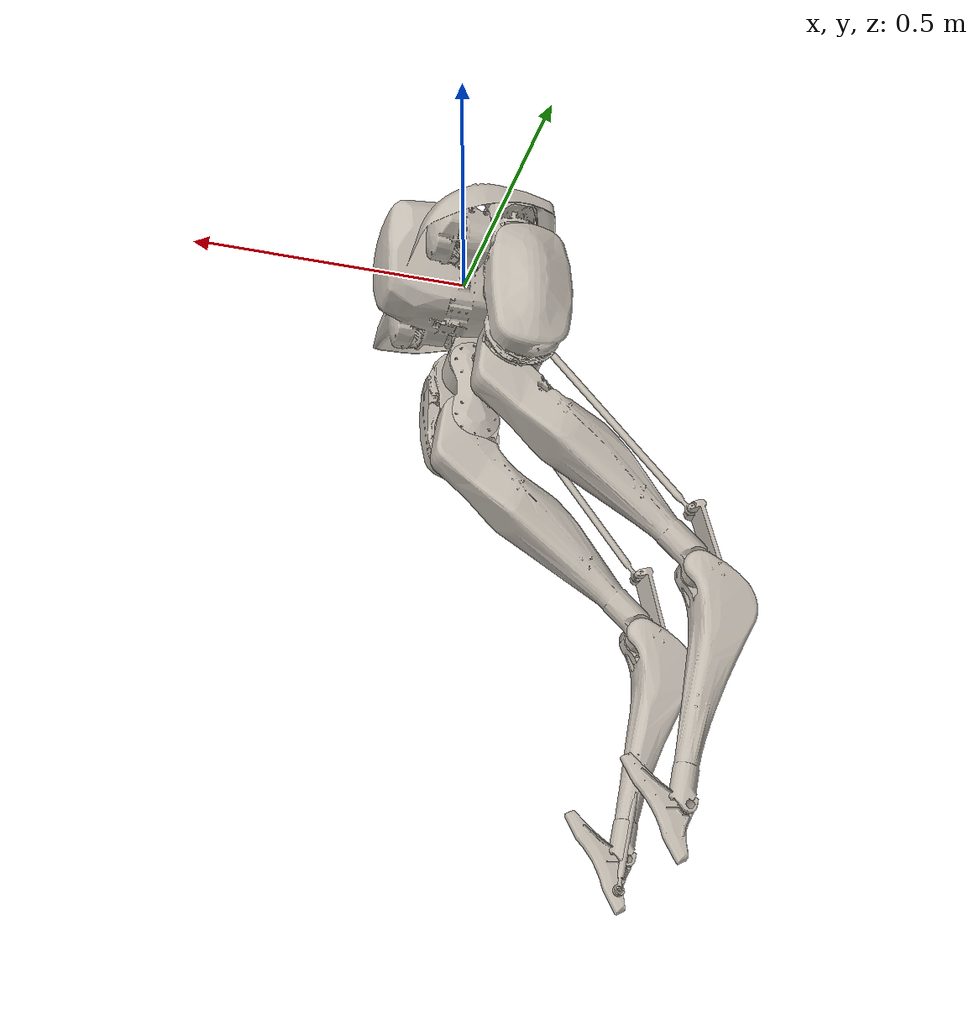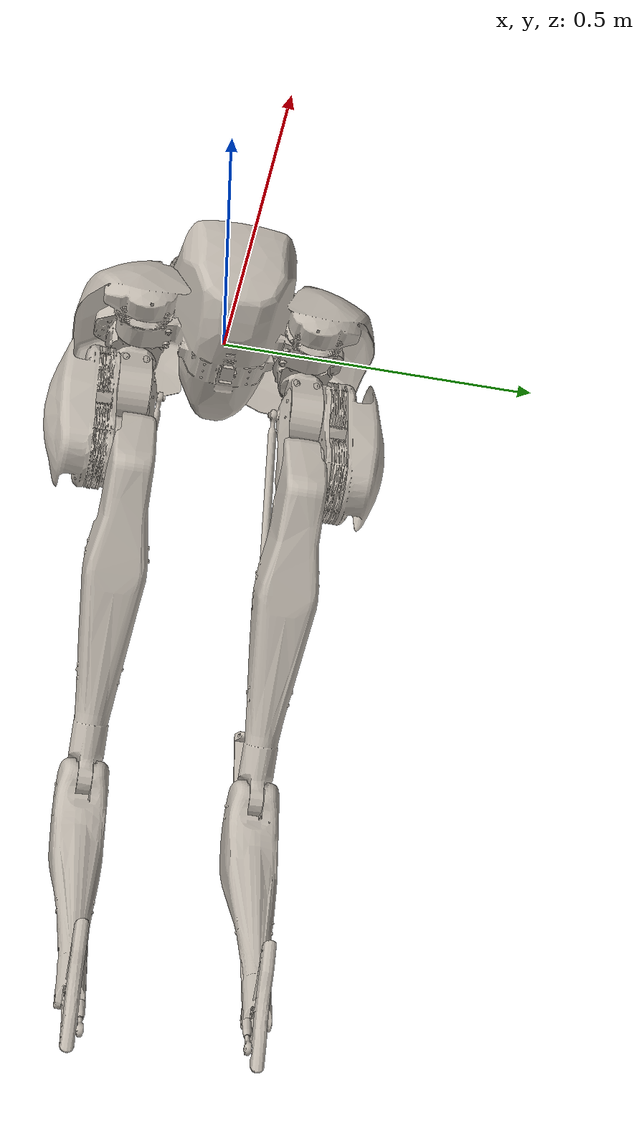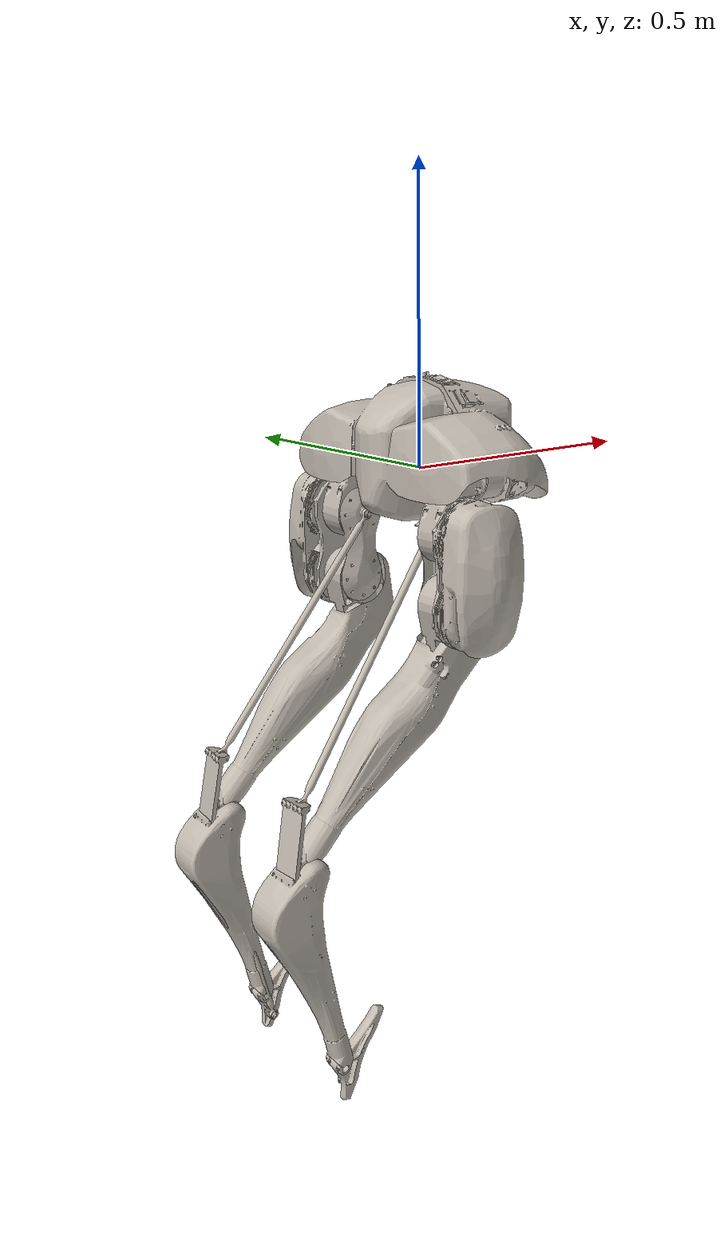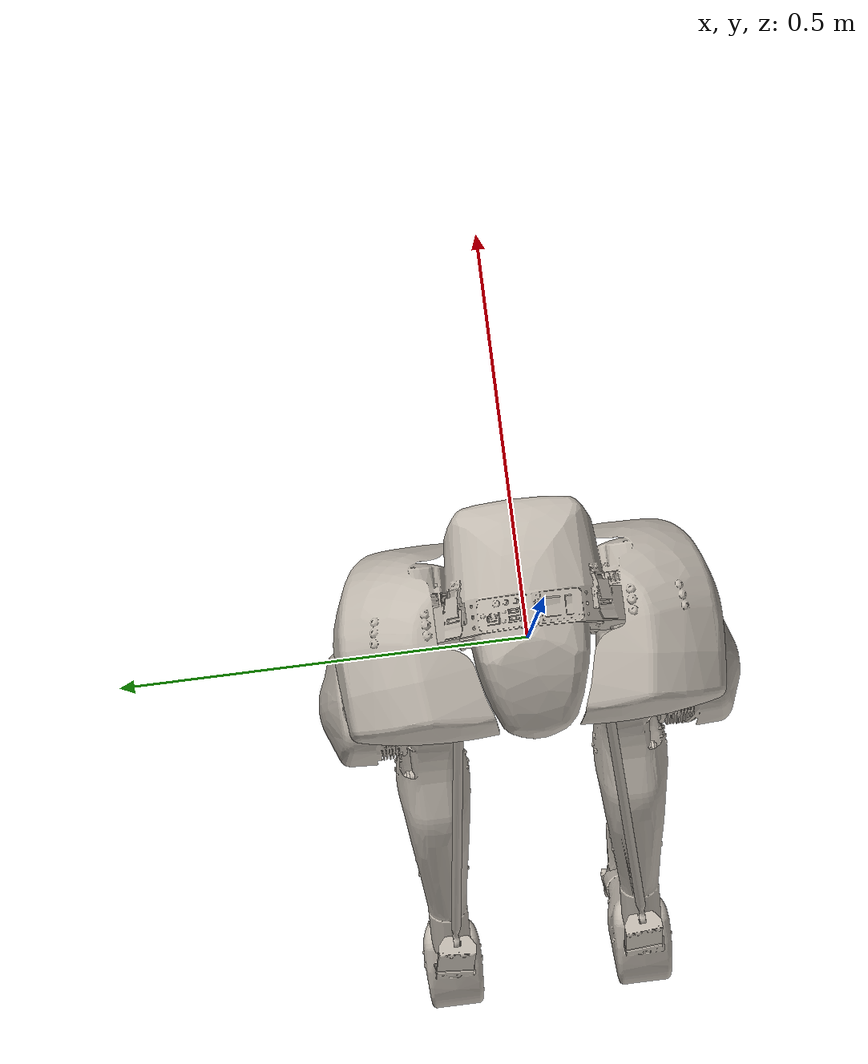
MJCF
<?xml version="1.0" ?>
<mujoco model="cassie">
	<compiler meshdir="cassie/meshes" texturedir="cassie/textures" angle="radian" autolimits="true" balanceinertia="true" boundmass="0.000001" boundinertia="0.000001"/>
	<default>
		<default class="visual">
			<geom contype="0" conaffinity="0"/>
		</default>
		<default class="collision">
			<geom rgba="1.0 0.0 0.0 0.0"/>
		</default>
	</default>
	<asset>
		<mesh name="cassie_pelvis" file="obj/cassie_pelvis.obj" scale="1.0 1.0 1.0"/>
		<mesh name="left_hip_roll" file="obj/left_hip_roll.obj" scale="1.0 1.0 1.0"/>
		<mesh name="left_hip_yaw" file="obj/left_hip_yaw.obj" scale="1.0 1.0 1.0"/>
		<mesh name="left_hip_pitch" file="obj/left_hip_pitch.obj" scale="1.0 1.0 1.0"/>
		<mesh name="left_achilles_rod" file="obj/left_achilles_rod.obj" scale="1.0 1.0 1.0"/>
		<mesh name="left_knee" file="obj/left_knee.obj" scale="1.0 1.0 1.0"/>
		<mesh name="left_knee_spring" file="obj/left_knee_spring.obj" scale="1.0 1.0 1.0"/>
		<mesh name="left_shin" file="obj/left_shin.obj" scale="1.0 1.0 1.0"/>
		<mesh name="left_tarsus" file="obj/left_tarsus.obj" scale="1.0 1.0 1.0"/>
		<mesh name="left_heel_spring" file="obj/left_heel_spring.obj" scale="1.0 1.0 1.0"/>
		<mesh name="left_foot_crank" file="obj/left_foot_crank.obj" scale="1.0 1.0 1.0"/>
		<mesh name="left_plantar_rod" file="obj/left_plantar_rod.obj" scale="1.0 1.0 1.0"/>
		<mesh name="left_foot" file="obj/left_foot.obj" scale="1.0 1.0 1.0"/>
		<mesh name="right_hip_roll" file="obj/right_hip_roll.obj" scale="1.0 1.0 1.0"/>
		<mesh name="right_hip_yaw" file="obj/right_hip_yaw.obj" scale="1.0 1.0 1.0"/>
		<mesh name="right_hip_pitch" file="obj/right_hip_pitch.obj" scale="1.0 1.0 1.0"/>
		<mesh name="right_achilles_rod" file="obj/right_achilles_rod.obj" scale="1.0 1.0 1.0"/>
		<mesh name="right_knee" file="obj/right_knee.obj" scale="1.0 1.0 1.0"/>
		<mesh name="right_knee_spring" file="obj/right_knee_spring.obj" scale="1.0 1.0 1.0"/>
		<mesh name="right_shin" file="obj/right_shin.obj" scale="1.0 1.0 1.0"/>
		<mesh name="right_tarsus" file="obj/right_tarsus.obj" scale="1.0 1.0 1.0"/>
		<mesh name="right_heel_spring" file="obj/right_heel_spring.obj" scale="1.0 1.0 1.0"/>
		<mesh name="right_foot_crank" file="obj/right_foot_crank.obj" scale="1.0 1.0 1.0"/>
		<mesh name="right_plantar_rod" file="obj/right_plantar_rod.obj" scale="1.0 1.0 1.0"/>
		<mesh name="right_foot" file="obj/right_foot.obj" scale="1.0 1.0 1.0"/>
		<material name="cassie" texture="cassie"/>
		<texture name="cassie" type="2d" file="cassie.png"/>
	</asset>
	<worldbody>
		<body name="cassie" pos="0.0 0.0 0.0" quat="1.0 0.0 0.0 0.0">
			<body name="cassie_pelvis" pos="0.0 0.0 0.0" quat="1.0 0.0 0.0 0.0">
				<geom name="Geom_0" type="mesh" pos="0.015332476235926151 -4.5823806431144476e-05 0.03643164783716202" quat="0.533416748046875 0.5333025455474854 -0.46415409445762634 0.46434471011161804" mesh="cassie_pelvis" material="cassie" class="visual"/>
				<geom name="Geom_1" type="ellipsoid" pos="0.029999999329447746 0.0 0.029999999329447746" quat="1.0 0.0 0.0 0.0" size="0.15000000596046448 0.11999999731779099 0.12999999523162842" class="collision"/>
				<geom name="Geom_2" type="capsule" pos="-0.009999999776482582 0.14000000059604645 0.009999999776482582" quat="0.7071067690849304 0.0 -0.7071067690849304 0.0" size="0.0949999988079071 0.029999999329447746 0.0" class="collision"/>
				<geom name="Geom_3" type="capsule" pos="-0.009999999776482582 -0.14000000059604645 0.009999999776482582" quat="0.7071067690849304 0.0 -0.7071067690849304 0.0" size="0.0949999988079071 0.029999999329447746 0.0" class="collision"/>
				<body name="right_hip_roll" pos="0.020999999716877937 -0.13500000536441803 0.0" quat="0.7071067690849304 0.0 0.7071067690849304 0.0">
					<inertial mass="1.8200000524520874" pos="-0.01792999915778637 9.999999747378752e-05 -0.044280000030994415" quat="0.9737591743469238 0.0044553508050739765 0.22640548646450043 0.022667817771434784" diaginertia="0.00384400668554008 0.0037928964011371136 0.0017220970476046205"/>
					<geom name="Geom_24" type="mesh" pos="-0.030032241716980934 -0.0027302380185574293 -0.06367003172636032" quat="0.8552268743515015 -0.10761242359876633 0.5061758756637573 -0.02815181203186512" mesh="right_hip_roll" material="cassie" class="visual"/>
					<joint name="right_hip_roll" type="hinge" pos="0.0 0.0 0.0" range="-0.39269909262657166 0.2617993950843811" axis="0.0 0.0 1.0"/>
					<body name="right_hip_yaw" pos="0.0 0.0 -0.07000000029802322" quat="0.7071067690849304 0.0 -0.7071067690849304 0.0">
						<inertial mass="1.1710000038146973" pos="0.0 9.999999747378752e-06 -0.03427699953317642" quat="0.7071460485458374 -4.9481481255497783e-05 -5.925715231569484e-05 0.7070674896240234" diaginertia="0.0028029999230057 0.0024429999757558107 0.0008419999503530562"/>
						<geom name="Geom_25" type="mesh" pos="6.4623468460922595e-06 -1.1435130545578431e-05 -0.07286112010478973" quat="0.7070610523223877 0.00026250959490425885 0.00012019480345770717 0.7071524262428284" mesh="right_hip_yaw" material="cassie" class="visual"/>
						<joint name="right_hip_yaw" type="hinge" pos="0.0 0.0 0.0" range="-0.39269909262657166 0.39269909262657166" axis="0.0 0.0 1.0"/>
						<body name="right_hip_pitch" pos="0.0 0.0 -0.09000000357627869" quat="-0.5 -0.5 -0.5 0.5">
							<inertial mass="5.519999980926514" pos="0.059459999203681946 4.999999873689376e-05 0.03581000119447708" quat="-0.011534487828612328 0.7081465125083923 -0.0015279552899301052 0.7059696316719055" diaginertia="0.03025735355913639 0.029717599973082542 0.010894046165049076"/>
							<geom name="Geom_26" type="mesh" pos="0.06051911786198616 0.0006756202201358974 0.055080264806747437" quat="0.48246756196022034 0.46817469596862793 0.5233864188194275 0.5235495567321777" mesh="right_hip_pitch" material="cassie" class="visual"/>
							<geom name="Geom_27" type="capsule" pos="0.05999999865889549 0.0 0.05000000074505806" quat="0.7071067690849304 0.0 -0.7071067690849304 0.0" size="0.07999999821186066 0.05999999865889549 0.0" class="collision"/>
							<joint name="right_hip_pitch" type="hinge" pos="0.0 0.0 0.0" range="-0.8726646304130554 1.3962633609771729" axis="0.0 0.0 1.0"/>
							<body name="right_knee" pos="0.11999999731779099 0.0 -0.0044999998062849045" quat="0.9238795042037964 0.0 -0.0 -0.3826834261417389">
								<inertial mass="0.7577999830245972" pos="0.023000000044703484 0.03206999972462654 0.0021810000762343407" quat="0.6387827396392822 0.32988274097442627 -0.6058588027954102 0.340689092874527" diaginertia="0.0021669911220669746 0.0016374749829992652 0.0007687339675612748"/>
								<geom name="Geom_29" type="mesh" pos="0.019954698160290718 0.03638797253370285 0.0024124563205987215" quat="0.586346447467804 -0.38111579418182373 0.6153823733329773 0.3636661767959595" mesh="right_knee" material="cassie" class="visual"/>
								<joint name="right_knee" type="hinge" pos="0.0 0.0 0.0" range="-2.862339973449707 -0.6457718014717102" axis="0.0 0.0 1.0"/>
								<body name="right_shin" pos="0.060679998248815536 0.04741000011563301 0.0" quat="1.0 0.0 0.0 0.0">
									<inertial mass="0.5770000219345093" pos="0.18337999284267426 0.0011690000537782907 -0.00021230000129435211" quat="0.4919813871383667 0.5006417036056519 0.4985664486885071 0.5086685419082642" diaginertia="0.014731071889400482 0.01470702700316906 0.0003562912461347878"/>
									<geom name="Geom_31" type="mesh" pos="0.15889368951320648 0.00558572169393301 -0.0006726673454977572" quat="0.7087695002555847 0.04382702708244324 0.7035410404205322 0.027477525174617767" mesh="right_shin" material="cassie" class="visual"/>
									<geom name="Geom_32" type="capsule" pos="0.054999999701976776 -0.004999999888241291 0.0" quat="0.7071067690849304 -0.03071475587785244 -0.7064393758773804 0.0" size="0.03999999910593033 0.11510864645242691 0.0" class="collision"/>
									<geom name="Geom_33" type="capsule" pos="0.2750000059604645 -0.011500000022351742 0.0" quat="0.7071067690849304 0.07698467373847961 -0.7029035091400146 0.0" size="0.027000000700354576 0.1056278869509697 0.0" class="collision"/>
									<geom name="Geom_34" type="capsule" pos="0.19487999379634857 0.02250000089406967 0.0" quat="0.7071067690849304 -0.06603457778692245 -0.7040166258811951 0.0" size="0.02500000037252903 0.2409329116344452 0.0" class="collision"/>
									<joint name="right_shin" type="hinge" pos="0.0 0.0 0.0" range="-0.3490658402442932 0.3490658402442932" axis="0.0 0.0 1.0"/>
									<body name="right_tarsus" pos="0.4347600042819977 0.019999999552965164 0.0" quat="0.8746196031570435 0.0 0.0 0.4848097860813141">
										<inertial mass="0.7820000052452087" pos="0.11045999825000763 -0.030579999089241028 0.0013099999632686377" quat="0.032995183020830154 0.7081351280212402 0.02044411189854145 0.7050092220306396" diaginertia="0.013674619607627392 0.013598802499473095 0.0003879580763168633"/>
										<geom name="Geom_35" type="mesh" pos="0.1457228660583496 -0.037279460579156876 0.0011771515710279346" quat="0.7049259543418884 0.020050836727023125 0.7087810039520264 0.017517762258648872" mesh="right_tarsus" material="cassie" class="visual"/>
										<geom name="Geom_36" type="capsule" pos="0.11999999731779099 -0.035294998437166214 0.0004600000102072954" quat="0.7085824012756348 -0.030154068022966385 -0.7049835324287415 0.0" size="0.02800000086426735 0.11010153591632843 0.0" class="collision"/>
										<geom name="Geom_37" type="capsule" pos="0.12399999797344208 -0.054999999701976776 0.0004600000102072954" quat="0.7090101838111877 0.1239672526717186 -0.6942166090011597 0.0" size="0.032999999821186066 0.08533001691102982 0.0" class="collision"/>
										<geom name="Geom_38" type="capsule" pos="0.3190000057220459 -0.03999999910593033 0.0" quat="0.7071067690849304 0.0 -0.7071067690849304 0.0" size="0.019999999552965164 0.11100000143051147 0.0" class="collision"/>
										<joint name="right_tarsus" type="hinge" pos="0.0 0.0 0.0" range="0.8726646304130554 2.96705961227417" axis="0.0 0.0 1.0"/>
										<body name="right_foot_crank" pos="0.057999998331069946 -0.03400000184774399 -0.022749999538064003" quat="1.0 0.0 0.0 0.0">
											<inertial mass="0.12610000371932983" pos="0.0049299998208880424 1.9999999494757503e-05 0.00215000007301569" quat="0.00019792407692875713 0.7439479827880859 0.0003257011703681201 0.6682374477386475" diaginertia="6.378808757290244e-05 4.9620994104770944e-05 2.6514919227338396e-05"/>
											<geom name="Geom_40" type="mesh" pos="0.017089499160647392 4.9604419473325834e-05 -0.0044750855304300785" quat="0.7465254068374634 0.0007349675288423896 0.6653565168380737 -0.00013087251863908023" mesh="right_foot_crank" material="cassie" class="visual"/>
											<joint name="right_foot_crank" type="hinge" pos="0.0 0.0 0.0" range="-2.4434609413146973 -0.5235987901687622" axis="0.0 0.0 1.0"/>
											<body name="right_plantar_rod" pos="0.054999999701976776 0.0 0.007910000160336494" quat="1.0 0.0 0.0 0.0">
												<inertial mass="0.11860000342130661" pos="0.17791999876499176 0.0 0.0" quat="-4.670861471822718e-06 0.7071083784103394 4.67088284494821e-06 0.7071051597595215" diaginertia="0.0017750000115484 0.0017740000039339066 2.7789997147920076e-06"/>
												<geom name="Geom_41" type="mesh" pos="0.17513571679592133 4.083452154191036e-07 1.9617338864463818e-07" quat="0.7071117162704468 3.855780596495606e-05 0.7071018815040588 4.209459075354971e-05" mesh="right_plantar_rod" material="cassie" class="visual"/>
												<joint name="right_plantar_rod" type="hinge" pos="0.0 0.0 0.0" range="0.0 0.0" axis="0.0 0.0 1.0"/>
											</body>
										</body>
										<body name="right_foot" pos="0.40799999237060547 -0.03999999910593033 0.0" quat="1.0 0.0 0.0 0.0">
											<inertial mass="0.14980000257492065" pos="0.004739999771118164 0.027480000630021095 0.00014000000373926014" quat="0.2700909376144409 0.6479209661483765 -0.27926790714263916 0.655178427696228" diaginertia="0.0003326265432406217 0.0002890713803935796 5.272209091344848e-05"/>
											<geom name="Geom_42" type="mesh" pos="0.008884768933057785 0.027471691370010376 -0.00010202051635133103" quat="0.6528940200805664 0.26759615540504456 0.6552407145500183 -0.2697799801826477" mesh="right_foot" material="cassie" class="visual"/>
											<geom name="Geom_43" type="capsule" pos="0.00846249982714653 0.04119899868965149 0.0" quat="0.7071067690849304 -0.454519659280777 -0.5416750311851501 0.0" size="0.019999999552965164 0.07999995350837708 0.0" class="collision"/>
											<joint name="right_foot" type="hinge" pos="0.0 0.0 0.0" range="-2.4434609413146973 -0.5235987901687622" axis="0.0 0.0 1.0"/>
										</body>
										<body name="right_heel_spring" pos="-0.012690000236034393 -0.03058999963104725 -0.0009200000204145908" quat="0.20935484766960144 -0.010860571637749672 0.03755583241581917 0.977057933807373">
											<inertial mass="0.12600000202655792" pos="0.08100000023841858 0.002199999988079071 0.0" quat="0.5091446042060852 0.5091936588287354 0.49242454767227173 0.4888882040977478" diaginertia="0.0002225751813966781 0.0002007018483709544 2.9322971386136487e-05"/>
											<geom name="Geom_39" type="mesh" pos="0.08624786883592606 0.001640240428969264 0.0001932189188664779" quat="0.5092779994010925 0.5121040940284729 0.485395610332489 0.4927234649658203" mesh="right_heel_spring" material="cassie" class="visual"/>
											<joint name="right_heel_spring" type="hinge" pos="0.0 0.0 0.0" range="0.0 0.0" axis="0.0 0.0 1.0"/>
										</body>
									</body>
								</body>
								<body name="right_knee_spring" pos="0.060679998248815536 0.08241000026464462 0.0" quat="1.0 0.0 0.0 0.0">
									<inertial mass="0.1860000044107437" pos="0.0835999995470047 0.0034000000450760126 0.0" quat="0.5047470331192017 0.5047470331192017 0.4952074885368347 0.4952074885368347" diaginertia="0.00041218107799068093 0.00036689999978989363 5.201890962780453e-05"/>
									<geom name="Geom_30" type="mesh" pos="0.09774613380432129 0.0020233020186424255 3.4393519854347687e-06" quat="0.5099207162857056 0.5099120736122131 0.4898744225502014 0.4898914098739624" mesh="right_knee_spring" material="cassie" class="visual"/>
								</body>
							</body>
							<body name="right_achilles_rod" pos="0.0 0.0 -0.04500000178813934" quat="0.9465141892433167 0.014506509527564049 -0.04298104718327522 -0.3194575607776642">
								<inertial mass="0.156700000166893" pos="0.24718999862670898 0.0 0.0" quat="-2.9493990041373763e-06 0.7071080207824707 2.949409690700122e-06 0.7071055173873901" diaginertia="0.004488000180572271 0.004486999940127134 3.7539996355917538e-06"/>
								<geom name="Geom_28" type="mesh" pos="0.2505268156528473 9.135010827776568e-07 1.7718425624480005e-06" quat="0.7071101665496826 -0.00046224944526329637 0.7071031332015991 -0.0004669354821089655" mesh="right_achilles_rod" material="cassie" class="visual"/>
								<joint name="right_achilles_rod" type="ball" pos="0.0 0.0 0.0"/>
							</body>
						</body>
					</body>
				</body>
				<body name="left_hip_roll" pos="0.020999999716877937 0.13500000536441803 0.0" quat="0.7071067690849304 0.0 0.7071067690849304 0.0">
					<inertial mass="1.8200000524520874" pos="-0.01792999915778637 9.999999747378752e-05 -0.044280000030994415" quat="0.9737591743469238 -0.0044553508050739765 0.22640548646450043 -0.022667817771434784" diaginertia="0.00384400668554008 0.0037928964011371136 0.0017220970476046205"/>
					<geom name="Geom_4" type="mesh" pos="-0.030032241716980934 0.0027302380185574293 -0.06367003172636032" quat="-0.028151806443929672 0.5061758756637573 -0.10761241614818573 0.8552268743515015" mesh="left_hip_roll" material="cassie" class="visual"/>
					<joint name="left_hip_roll" type="hinge" pos="0.0 0.0 0.0" range="-0.2617993950843811 0.39269909262657166" axis="0.0 0.0 1.0"/>
					<body name="left_hip_yaw" pos="0.0 0.0 -0.07000000029802322" quat="0.7071067690849304 0.0 -0.7071067690849304 0.0">
						<inertial mass="1.1710000038146973" pos="0.0 -9.999999747378752e-06 -0.03427699953317642" quat="0.7070674896240234 -5.925715231569484e-05 -4.9481481255497783e-05 0.7071460485458374" diaginertia="0.0028029999230057 0.0024429999757558107 0.0008419999503530562"/>
						<geom name="Geom_5" type="mesh" pos="6.462473265855806e-06 1.143508870882215e-05 -0.07286112010478973" quat="0.00026251093368045986 0.7070610523223877 -0.7071524262428284 -0.00012019567657262087" mesh="left_hip_yaw" material="cassie" class="visual"/>
						<joint name="left_hip_yaw" type="hinge" pos="0.0 0.0 0.0" range="-0.39269909262657166 0.39269909262657166" axis="0.0 0.0 1.0"/>
						<body name="left_hip_pitch" pos="0.0 0.0 -0.09000000357627869" quat="-0.5 -0.5 -0.5 0.5">
							<inertial mass="5.519999980926514" pos="0.059459999203681946 4.999999873689376e-05 -0.03581000119447708" quat="0.0015279552899301052 0.7059696316719055 0.011534487828612328 0.7081465125083923" diaginertia="0.03025735355913639 0.029717599973082542 0.010894046165049076"/>
							<geom name="Geom_6" type="mesh" pos="0.06051911786198616 0.0006756202201358974 -0.055080264806747437" quat="-0.5233864188194275 0.5235495567321777 -0.48246756196022034 0.46817469596862793" mesh="left_hip_pitch" material="cassie" class="visual"/>
							<geom name="Geom_7" type="capsule" pos="0.05999999865889549 0.0 -0.05000000074505806" quat="0.7071067690849304 0.0 -0.7071067690849304 0.0" size="0.07999999821186066 0.05999999865889549 0.0" class="collision"/>
							<joint name="left_hip_pitch" type="hinge" pos="0.0 0.0 0.0" range="-0.8726646304130554 1.3962633609771729" axis="0.0 0.0 1.0"/>
							<body name="left_knee" pos="0.11999999731779099 0.0 0.0044999998062849045" quat="0.9238795042037964 0.0 -0.0 -0.3826834261417389">
								<inertial mass="0.7577999830245972" pos="0.023000000044703484 0.03206999972462654 -0.0021810000762343407" quat="0.6058588027954102 0.340689092874527 -0.6387827396392822 0.32988274097442627" diaginertia="0.0021669911220669746 0.0016374749829992652 0.0007687339675612748"/>
								<geom name="Geom_9" type="mesh" pos="0.019954698160290718 0.03638797253370285 -0.0024124563205987215" quat="0.586346447467804 0.38111579418182373 -0.6153823733329773 0.3636661767959595" mesh="left_knee" material="cassie" class="visual"/>
								<joint name="left_knee" type="hinge" pos="0.0 0.0 0.0" range="-2.862339973449707 -0.6457718014717102" axis="0.0 0.0 1.0"/>
								<body name="left_shin" pos="0.060679998248815536 0.04741000011563301 0.0" quat="1.0 0.0 0.0 0.0">
									<inertial mass="0.5770000219345093" pos="0.18337999284267426 0.0011690000537782907 0.00021230000129435211" quat="0.5006417036056519 0.4919813871383667 0.5086685419082642 0.4985664486885071" diaginertia="0.014731071889400482 0.01470702700316906 0.0003562912461347878"/>
									<geom name="Geom_11" type="mesh" pos="0.15889368951320648 0.00558572169393301 0.0006726673454977572" quat="0.043827030807733536 0.7087695002555847 0.027477527037262917 0.7035410404205322" mesh="left_shin" material="cassie" class="visual"/>
									<geom name="Geom_12" type="capsule" pos="0.054999999701976776 -0.004999999888241291 0.0" quat="0.7071067690849304 -0.03071475587785244 -0.7064393758773804 0.0" size="0.03999999910593033 0.11510864645242691 0.0" class="collision"/>
									<geom name="Geom_13" type="capsule" pos="0.2750000059604645 -0.011500000022351742 0.0" quat="0.7071067690849304 0.07698467373847961 -0.7029035091400146 0.0" size="0.027000000700354576 0.1056278869509697 0.0" class="collision"/>
									<geom name="Geom_14" type="capsule" pos="0.19487999379634857 0.02250000089406967 0.0" quat="0.7071067690849304 -0.06603457778692245 -0.7040166258811951 0.0" size="0.02500000037252903 0.2409329116344452 0.0" class="collision"/>
									<joint name="left_shin" type="hinge" pos="0.0 0.0 0.0" range="-0.3490658402442932 0.3490658402442932" axis="0.0 0.0 1.0"/>
									<body name="left_tarsus" pos="0.4347600042819977 0.019999999552965164 0.0" quat="0.8746196031570435 0.0 0.0 0.4848097860813141">
										<inertial mass="0.7820000052452087" pos="0.11045999825000763 -0.030579999089241028 -0.0013099999632686377" quat="-0.02044411189854145 0.7050092220306396 -0.032995183020830154 0.7081351280212402" diaginertia="0.013674619607627392 0.013598802499473095 0.0003879580763168633"/>
										<geom name="Geom_15" type="mesh" pos="0.1457228809595108 -0.037279460579156876 -0.0011771516874432564" quat="0.020050836727023125 0.7049259543418884 0.017517762258648872 0.7087810039520264" mesh="left_tarsus" material="cassie" class="visual"/>
										<geom name="Geom_16" type="capsule" pos="0.11999999731779099 -0.035294998437166214 0.0004600000102072954" quat="0.7085824012756348 -0.030154068022966385 -0.7049835324287415 0.0" size="0.02800000086426735 0.11010153591632843 0.0" class="collision"/>
										<geom name="Geom_17" type="capsule" pos="0.12399999797344208 -0.054999999701976776 0.0004600000102072954" quat="0.7090101838111877 0.1239672526717186 -0.6942166090011597 0.0" size="0.032999999821186066 0.08533001691102982 0.0" class="collision"/>
										<geom name="Geom_18" type="capsule" pos="0.3190000057220459 -0.03999999910593033 0.0" quat="0.7071067690849304 0.0 -0.7071067690849304 0.0" size="0.019999999552965164 0.11100000143051147 0.0" class="collision"/>
										<joint name="left_tarsus" type="hinge" pos="0.0 0.0 0.0" range="0.8726646304130554 2.96705961227417" axis="0.0 0.0 1.0"/>
										<body name="left_foot_crank" pos="0.057999998331069946 -0.03400000184774399 0.022749999538064003" quat="1.0 0.0 0.0 0.0">
											<inertial mass="0.12610000371932983" pos="0.0049299998208880424 1.9999999494757503e-05 -0.00215000007301569" quat="-0.0003257011703681201 0.6682374477386475 -0.00019792407692875713 0.7439479827880859" diaginertia="6.378808757290244e-05 4.9620994104770944e-05 2.6514919227338396e-05"/>
											<geom name="Geom_20" type="mesh" pos="0.017089499160647392 4.9604455853113905e-05 0.0044750855304300785" quat="0.0007349673542194068 0.7465254068374634 -0.0001308723003603518 0.6653565168380737" mesh="left_foot_crank" material="cassie" class="visual"/>
											<joint name="left_foot_crank" type="hinge" pos="0.0 0.0 0.0" range="-2.4434609413146973 -0.5235987901687622" axis="0.0 0.0 1.0"/>
											<body name="left_plantar_rod" pos="0.054999999701976776 0.0 -0.007910000160336494" quat="1.0 0.0 0.0 0.0">
												<inertial mass="0.11860000342130661" pos="0.17791999876499176 0.0 0.0" quat="-4.67088284494821e-06 0.7071051597595215 4.670861471822718e-06 0.7071083784103394" diaginertia="0.0017750000115484 0.0017740000039339066 2.7789997147920076e-06"/>
												<geom name="Geom_21" type="mesh" pos="0.17513571679592133 4.08341804813972e-07 -1.9616099677932652e-07" quat="3.855827162624337e-05 0.7071117162704468 4.2095060052815825e-05 0.7071018815040588" mesh="left_plantar_rod" material="cassie" class="visual"/>
												<joint name="left_plantar_rod" type="hinge" pos="0.0 0.0 0.0" range="0.0 0.0" axis="0.0 0.0 1.0"/>
											</body>
										</body>
										<body name="left_foot" pos="0.40799999237060547 -0.03999999910593033 0.0" quat="1.0 0.0 0.0 0.0">
											<inertial mass="0.14980000257492065" pos="0.004739999771118164 0.027480000630021095 -0.00014000000373926014" quat="0.27926790714263916 0.655178427696228 -0.2700909376144409 0.6479209661483765" diaginertia="0.0003326265432406217 0.0002890713803935796 5.272209091344848e-05"/>
											<geom name="Geom_22" type="mesh" pos="0.008884768933057785 0.027471691370010376 0.00010202053817920387" quat="0.26759615540504456 0.6528940200805664 -0.2697799801826477 0.6552407145500183" mesh="left_foot" material="cassie" class="visual"/>
											<geom name="Geom_23" type="capsule" pos="0.00846249982714653 0.04119899868965149 0.0" quat="0.7071067690849304 -0.454519659280777 -0.5416750311851501 0.0" size="0.019999999552965164 0.07999995350837708 0.0" class="collision"/>
											<joint name="left_foot" type="hinge" pos="0.0 0.0 0.0" range="-2.4434609413146973 -0.5235987901687622" axis="0.0 0.0 1.0"/>
										</body>
										<body name="left_heel_spring" pos="-0.012690000236034393 -0.03058999963104725 0.0009200000204145908" quat="0.20935484766960144 0.010860571637749672 -0.03755583241581917 0.977057933807373">
											<inertial mass="0.12600000202655792" pos="0.08100000023841858 0.002199999988079071 0.0" quat="0.5091936588287354 0.5091446042060852 0.4888882040977478 0.49242454767227173" diaginertia="0.0002225751813966781 0.0002007018483709544 2.9322971386136487e-05"/>
											<geom name="Geom_19" type="mesh" pos="0.08624786883592606 0.001640240428969264 -0.00019321887521073222" quat="-0.485395610332489 0.4927234649658203 -0.5092779994010925 0.5121040940284729" mesh="left_heel_spring" material="cassie" class="visual"/>
											<joint name="left_heel_spring" type="hinge" pos="0.0 0.0 0.0" range="0.0 0.0" axis="0.0 0.0 1.0"/>
										</body>
									</body>
								</body>
								<body name="left_knee_spring" pos="0.060679998248815536 0.08241000026464462 0.0" quat="1.0 0.0 0.0 0.0">
									<inertial mass="0.1860000044107437" pos="0.0835999995470047 0.0034000000450760126 0.0" quat="0.5047470331192017 0.5047470331192017 0.4952074885368347 0.4952074885368347" diaginertia="0.00041218107799068093 0.00036689999978989363 5.201890962780453e-05"/>
									<geom name="Geom_10" type="mesh" pos="0.09774612635374069 0.0020233020186424255 -3.4393210626149084e-06" quat="-0.4898744225502014 0.4898914098739624 -0.5099207162857056 0.5099120736122131" mesh="left_knee_spring" material="cassie" class="visual"/>
								</body>
							</body>
							<body name="left_achilles_rod" pos="0.0 0.0 0.04500000178813934" quat="0.9465141892433167 -0.014506509527564049 0.04298104718327522 -0.3194575607776642">
								<inertial mass="0.156700000166893" pos="0.24718999862670898 0.0 0.0" quat="-2.949409690700122e-06 0.7071055173873901 2.9493990041373763e-06 0.7071080207824707" diaginertia="0.004488000180572271 0.004486999940127134 3.7539996355917538e-06"/>
								<geom name="Geom_8" type="mesh" pos="0.2505268156528473 9.135077334576636e-07 -1.7718090248308727e-06" quat="-0.0004622502892743796 0.7071101665496826 -0.00046693632612004876 0.7071031332015991" mesh="left_achilles_rod" material="cassie" class="visual"/>
								<joint name="left_achilles_rod" type="ball" pos="0.0 0.0 0.0"/>
							</body>
						</body>
					</body>
				</body>
			</body>
		</body>
	</worldbody>
	<equality/>
</mujoco>
